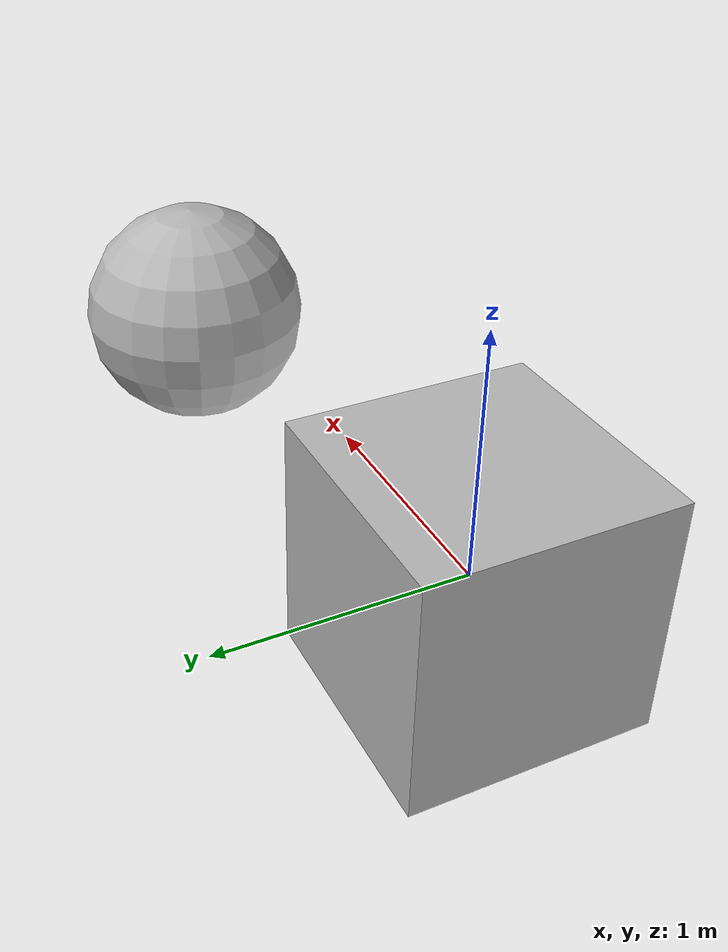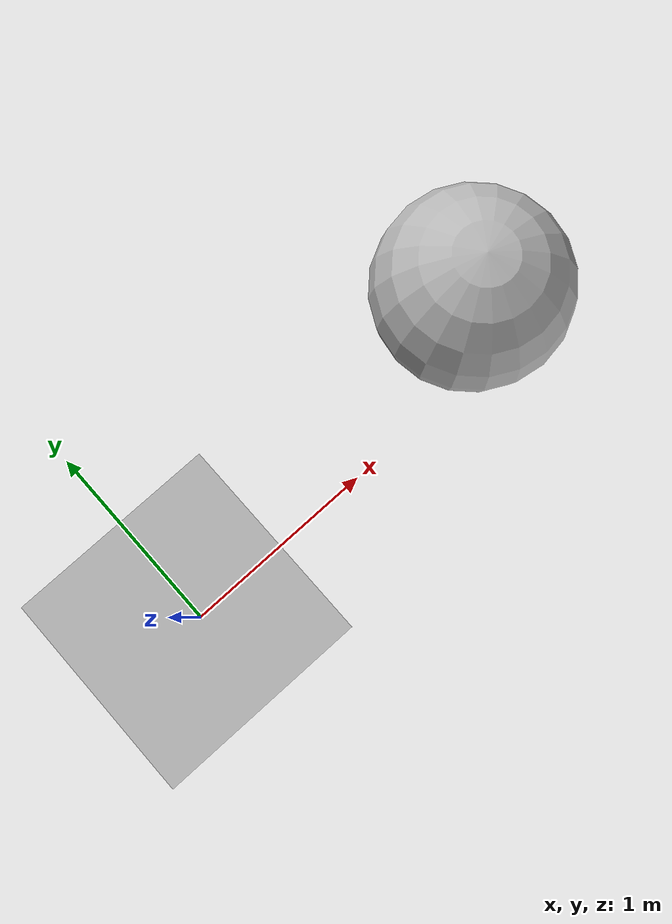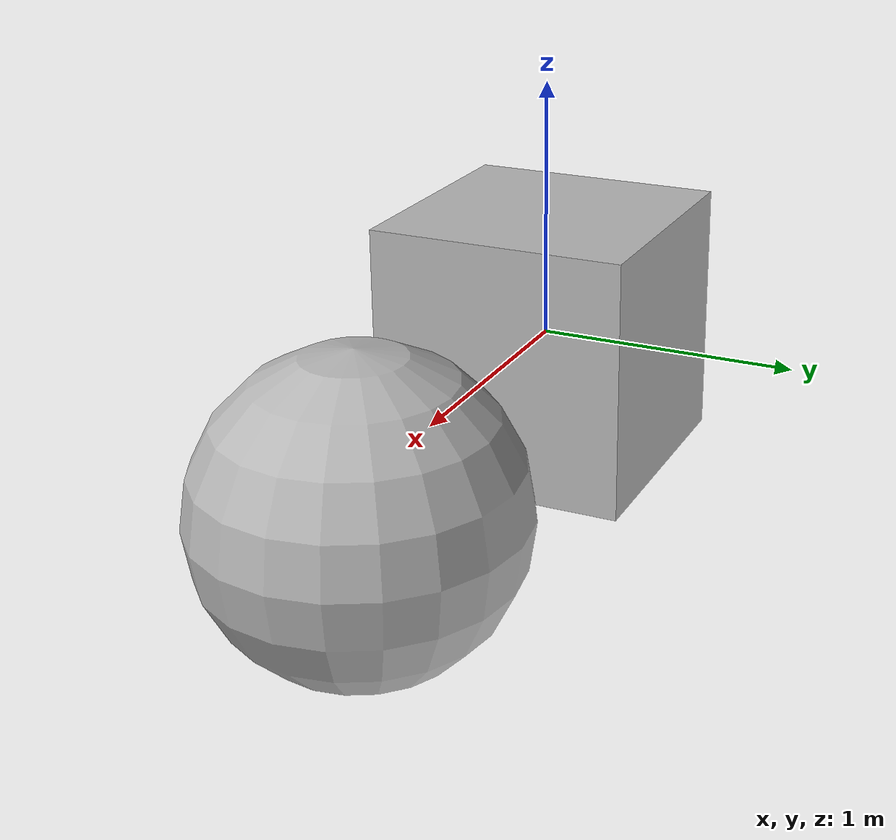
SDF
<sdf version='1.5'>
  <world name='default'>
    <physics name='default_physics' default='0' type='ode'>
      <gravity>-100 0 0</gravity>
      <ode>
        <solver>
          <type>quick</type>
          <iters>300</iters>
          <sor>1.0</sor>
        </solver>
        <constraints>
          <cfm>0</cfm>
          <erp>0.5</erp>
          <contact_max_correcting_vel>1000.0</contact_max_correcting_vel>
          <contact_surface_layer>0</contact_surface_layer>
        </constraints>
      </ode>
      <real_time_update_rate>0.000000</real_time_update_rate>
      <max_step_size>0.001</max_step_size>
    </physics>
    <model name='box'>
      <allow_auto_disable>0</allow_auto_disable>
      <pose>0 0 0 0 -0 0</pose>
      <link name='link'>
        <inertial>
          <inertia>
            <ixx>1</ixx>
            <ixy>0</ixy>
            <ixz>0</ixz>
            <iyy>1</iyy>
            <iyz>0</iyz>
            <izz>1</izz>
          </inertia>
          <mass>5</mass>
        </inertial>
        <velocity_decay>
          <linear>0</linear>
          <angular>0</angular>
        </velocity_decay>
        <collision name='collision'>
          <geometry>
            <box>
              <size>1 1 1</size>
            </box>
          </geometry>
          <surface>
            <contact>
              <poissons_ratio>0.3</poissons_ratio>
              <elastic_modulus>500000.0</elastic_modulus>
              <ode>
                <kp>1</kp>
                <kd>100.0</kd>
                <max_vel>100.0</max_vel>
                <min_depth>0.0015</min_depth>
              </ode>
            </contact>
            <friction>
              <torsional>
                <coefficient>1.0</coefficient>
                <use_patch_radius>0</use_patch_radius>
                <surface_radius>0.08</surface_radius>
              </torsional>
              <ode>
                <mu>1</mu>
                <mu2>1</mu2>
              </ode>
            </friction>
          </surface>
        </collision>
        <visual name='visual'>
          <geometry>
            <box>
              <size>1 1 1</size>
            </box>
          </geometry>
          <material>
            <script>
              <uri>__default__</uri>
              <name>__default__</name>
            </script>
          </material>
        </visual>
      </link>
      <static>1</static>
    </model>
    <model name='sphere'>
      <allow_auto_disable>0</allow_auto_disable>
      <pose>2 0.3 0.2 0 -0 0</pose>
      <link name='link'>
        <inertial>
          <inertia>
            <ixx>1</ixx>
            <ixy>0</ixy>
            <ixz>0</ixz>
            <iyy>1</iyy>
            <iyz>0</iyz>
            <izz>1</izz>
          </inertia>
          <mass>3</mass>
        </inertial>
        <velocity_decay>
          <linear>0</linear>
          <angular>0</angular>
        </velocity_decay>
        <collision name='collision'>
          <geometry>
            <sphere>
              <radius>0.5</radius>
            </sphere>
          </geometry>
          <surface>
            <contact>
              <poissons_ratio>0.4</poissons_ratio>
              <elastic_modulus>600000.0</elastic_modulus>
              <ode>
                <kp>1</kp>
                <kd>100.0</kd>
                <max_vel>100.0</max_vel>
                <min_depth>0.001</min_depth>
              </ode>
            </contact>
            <friction>
              <torsional>
                <coefficient>1.0</coefficient>
                <use_patch_radius>0</use_patch_radius>
                <surface_radius>0.06</surface_radius>
              </torsional>
              <ode>
                <mu>1</mu>
                <mu2>1</mu2>
              </ode>
            </friction>
          </surface>
        </collision>
        <visual name='visual'>
          <geometry>
            <sphere>
              <radius>0.5</radius>
            </sphere>
          </geometry>
          <material>
            <script>
              <uri>__default__</uri>
              <name>__default__</name>
            </script>
          </material>
        </visual>
      </link>
    </model>
    <light name='sun' type='directional'>
      <pose>0 0 10 0 -0 0</pose>
      <diffuse>0.8 0.8 0.8 1</diffuse>
      <specular>0.1 0.1 0.1 1</specular>
      <attenuation>
        <range>10</range>
        <linear>0.01</linear>
        <constant>0.8</constant>
        <quadratic>0</quadratic>
      </attenuation>
      <direction>0 0.5 -0.5</direction>
      <cast_shadows>1</cast_shadows>
    </light>
    <scene>
      <ambient>0.4 0.4 0.4 1</ambient>
      <background>0.7 0.7 0.7 1</background>
      <shadows>1</shadows>
    </scene>
  </world>
</sdf>
